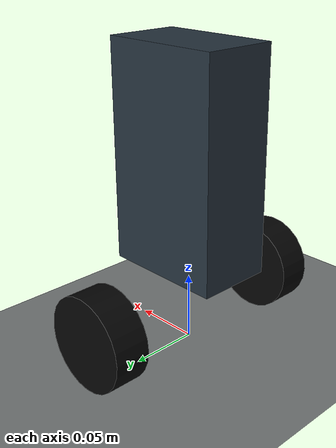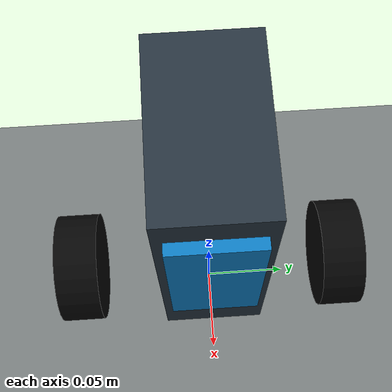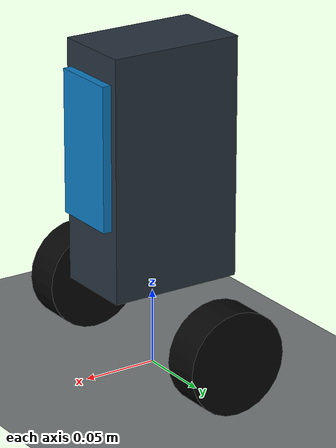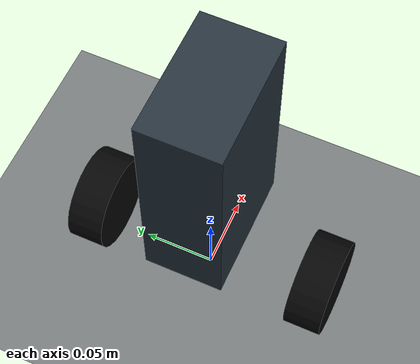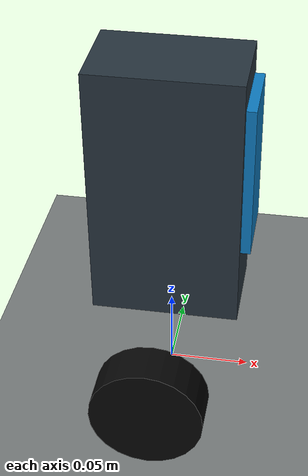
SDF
<?xml version="1.0" ?>
<sdf version="1.10">
  <world name="tumbller_lab">
    <physics name="default_physics" type="ode">
      <max_step_size>0.001</max_step_size>
      <real_time_factor>1.0</real_time_factor>
      <real_time_update_rate>1000</real_time_update_rate>
    </physics>

    <plugin filename="gz-sim-physics-system" name="gz::sim::systems::Physics"/>
    <plugin filename="gz-sim-user-commands-system" name="gz::sim::systems::UserCommands"/>
    <plugin filename="gz-sim-scene-broadcaster-system" name="gz::sim::systems::SceneBroadcaster"/>
    <plugin filename="gz-sim-sensors-system" name="gz::sim::systems::Sensors">
      <render_engine>ogre2</render_engine>
    </plugin>
    <plugin filename="gz-sim-imu-system" name="gz::sim::systems::Imu"/>

    <light name="sun" type="directional">
      <cast_shadows>true</cast_shadows>
      <pose>0 0 10 0 0 0</pose>
      <diffuse>0.8 0.8 0.8 1</diffuse>
      <specular>0.2 0.2 0.2 1</specular>
      <direction>-0.5 0.1 -0.9</direction>
    </light>

    <model name="ground_plane">
      <static>true</static>
      <link name="ground">
        <collision name="collision">
          <geometry>
            <plane>
              <normal>0 0 1</normal>
              <size>20 20</size>
            </plane>
          </geometry>
          <surface>
            <friction>
              <ode>
                <mu>1.4</mu>
                <mu2>1.4</mu2>
              </ode>
            </friction>
          </surface>
        </collision>
        <visual name="visual">
          <geometry>
            <plane>
              <normal>0 0 1</normal>
              <size>20 20</size>
            </plane>
          </geometry>
          <material>
            <ambient>0.36 0.38 0.38 1</ambient>
            <diffuse>0.46 0.48 0.48 1</diffuse>
          </material>
        </visual>
      </link>
    </model>

    <include>
      <uri>model://twip_reference</uri>
      <name>tumbller</name>
      <pose>0 0 0 0 0 0</pose>
    </include>
  </world>
</sdf>

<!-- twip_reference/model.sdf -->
<sdf version="1.10">
  <model name="twip_reference">
    <pose>0 0 0 0 0 0</pose>
    <self_collide>false</self_collide>

    <plugin filename="gz-sim-joint-state-publisher-system" name="gz::sim::systems::JointStatePublisher">
      <joint_name>left_wheel_joint</joint_name>
      <joint_name>right_wheel_joint</joint_name>
    </plugin>

    <plugin filename="gz-sim-joint-controller-system" name="gz::sim::systems::JointController">
      <joint_name>left_wheel_joint</joint_name>
      <topic>/model/tumbller/joint/left_wheel_joint/cmd_vel</topic>
      <use_velocity_commands>true</use_velocity_commands>
      <p_gain>2.5</p_gain>
      <i_gain>0.0</i_gain>
      <d_gain>0.04</d_gain>
      <cmd_max>18.85</cmd_max>
      <cmd_min>-18.85</cmd_min>
    </plugin>
    <plugin filename="gz-sim-joint-controller-system" name="gz::sim::systems::JointController">
      <joint_name>right_wheel_joint</joint_name>
      <topic>/model/tumbller/joint/right_wheel_joint/cmd_vel</topic>
      <use_velocity_commands>true</use_velocity_commands>
      <p_gain>2.5</p_gain>
      <i_gain>0.0</i_gain>
      <d_gain>0.04</d_gain>
      <cmd_max>18.85</cmd_max>
      <cmd_min>-18.85</cmd_min>
    </plugin>

    <link name="chassis">
      <pose>0 0 0.125 0 0 0</pose>
      <inertial>
        <pose>0 0 0.015 0 0 0</pose>
        <mass>0.50</mass>
        <inertia>
          <ixx>0.0020</ixx>
          <ixy>0</ixy>
          <ixz>0</ixz>
          <iyy>0.0012</iyy>
          <iyz>0</iyz>
          <izz>0.0017</izz>
        </inertia>
      </inertial>

      <collision name="body_collision">
        <pose>0 0 0.015 0 0 0</pose>
        <geometry>
          <box>
            <size>0.090 0.055 0.160</size>
          </box>
        </geometry>
      </collision>
      <visual name="body_visual">
        <pose>0 0 0.015 0 0 0</pose>
        <geometry>
          <box>
            <size>0.090 0.055 0.160</size>
          </box>
        </geometry>
        <material>
          <ambient>0.12 0.15 0.18 1</ambient>
          <diffuse>0.15 0.20 0.24 1</diffuse>
          <specular>0.25 0.25 0.25 1</specular>
        </material>
      </visual>
      <visual name="front_panel">
        <pose>0.048 0 0.030 0 0 0</pose>
        <geometry>
          <box>
            <size>0.006 0.045 0.095</size>
          </box>
        </geometry>
        <material>
          <ambient>0.05 0.48 0.75 1</ambient>
          <diffuse>0.05 0.48 0.75 1</diffuse>
        </material>
      </visual>
      <visual name="com_marker">
        <pose>0 0 0.015 0 0 0</pose>
        <geometry>
          <sphere>
            <radius>0.010</radius>
          </sphere>
        </geometry>
        <material>
          <ambient>0.90 0.12 0.08 1</ambient>
          <diffuse>0.90 0.12 0.08 1</diffuse>
        </material>
      </visual>

      <sensor name="imu_sensor" type="imu">
        <pose>0.025 0 0.055 0 0 0</pose>
        <always_on>true</always_on>
        <update_rate>200</update_rate>
        <topic>/world/tumbller_lab/model/tumbller/link/chassis/sensor/imu_sensor/imu</topic>
        <imu>
          <angular_velocity>
            <x><noise type="gaussian"><mean>0</mean><stddev>0.001</stddev></noise></x>
            <y><noise type="gaussian"><mean>0</mean><stddev>0.001</stddev></noise></y>
            <z><noise type="gaussian"><mean>0</mean><stddev>0.001</stddev></noise></z>
          </angular_velocity>
          <linear_acceleration>
            <x><noise type="gaussian"><mean>0</mean><stddev>0.02</stddev></noise></x>
            <y><noise type="gaussian"><mean>0</mean><stddev>0.02</stddev></noise></y>
            <z><noise type="gaussian"><mean>0</mean><stddev>0.02</stddev></noise></z>
          </linear_acceleration>
        </imu>
      </sensor>
    </link>

    <link name="left_wheel">
      <pose>0 0.082 0.034 0 0 0</pose>
      <inertial>
        <mass>0.050</mass>
        <inertia>
          <ixx>0.000018</ixx>
          <ixy>0</ixy>
          <ixz>0</ixz>
          <iyy>0.000032</iyy>
          <iyz>0</iyz>
          <izz>0.000018</izz>
        </inertia>
      </inertial>
      <collision name="collision">
        <pose>0 0 0 1.57079632679 0 0</pose>
        <geometry>
          <cylinder>
            <radius>0.034</radius>
            <length>0.026</length>
          </cylinder>
        </geometry>
        <surface>
          <friction>
            <ode>
              <mu>1.4</mu>
              <mu2>1.4</mu2>
            </ode>
          </friction>
        </surface>
      </collision>
      <visual name="visual">
        <pose>0 0 0 1.57079632679 0 0</pose>
        <geometry>
          <cylinder>
            <radius>0.034</radius>
            <length>0.026</length>
          </cylinder>
        </geometry>
        <material>
          <ambient>0.02 0.02 0.02 1</ambient>
          <diffuse>0.02 0.02 0.02 1</diffuse>
        </material>
      </visual>
    </link>

    <link name="right_wheel">
      <pose>0 -0.082 0.034 0 0 0</pose>
      <inertial>
        <mass>0.050</mass>
        <inertia>
          <ixx>0.000018</ixx>
          <ixy>0</ixy>
          <ixz>0</ixz>
          <iyy>0.000032</iyy>
          <iyz>0</iyz>
          <izz>0.000018</izz>
        </inertia>
      </inertial>
      <collision name="collision">
        <pose>0 0 0 1.57079632679 0 0</pose>
        <geometry>
          <cylinder>
            <radius>0.034</radius>
            <length>0.026</length>
          </cylinder>
        </geometry>
        <surface>
          <friction>
            <ode>
              <mu>1.4</mu>
              <mu2>1.4</mu2>
            </ode>
          </friction>
        </surface>
      </collision>
      <visual name="visual">
        <pose>0 0 0 1.57079632679 0 0</pose>
        <geometry>
          <cylinder>
            <radius>0.034</radius>
            <length>0.026</length>
          </cylinder>
        </geometry>
        <material>
          <ambient>0.02 0.02 0.02 1</ambient>
          <diffuse>0.02 0.02 0.02 1</diffuse>
        </material>
      </visual>
    </link>

    <joint name="left_wheel_joint" type="revolute">
      <parent>chassis</parent>
      <child>left_wheel</child>
      <pose relative_to="chassis">0 0.082 -0.091 0 0 0</pose>
      <axis>
        <xyz>0 1 0</xyz>
        <limit>
          <lower>-1e16</lower>
          <upper>1e16</upper>
          <effort>2.5</effort>
          <velocity>22.0</velocity>
        </limit>
        <dynamics>
          <damping>0.001</damping>
          <friction>0.001</friction>
        </dynamics>
      </axis>
    </joint>
    <joint name="right_wheel_joint" type="revolute">
      <parent>chassis</parent>
      <child>right_wheel</child>
      <pose relative_to="chassis">0 -0.082 -0.091 0 0 0</pose>
      <axis>
        <xyz>0 1 0</xyz>
        <limit>
          <lower>-1e16</lower>
          <upper>1e16</upper>
          <effort>2.5</effort>
          <velocity>22.0</velocity>
        </limit>
        <dynamics>
          <damping>0.001</damping>
          <friction>0.001</friction>
        </dynamics>
      </axis>
    </joint>
  </model>
</sdf>
